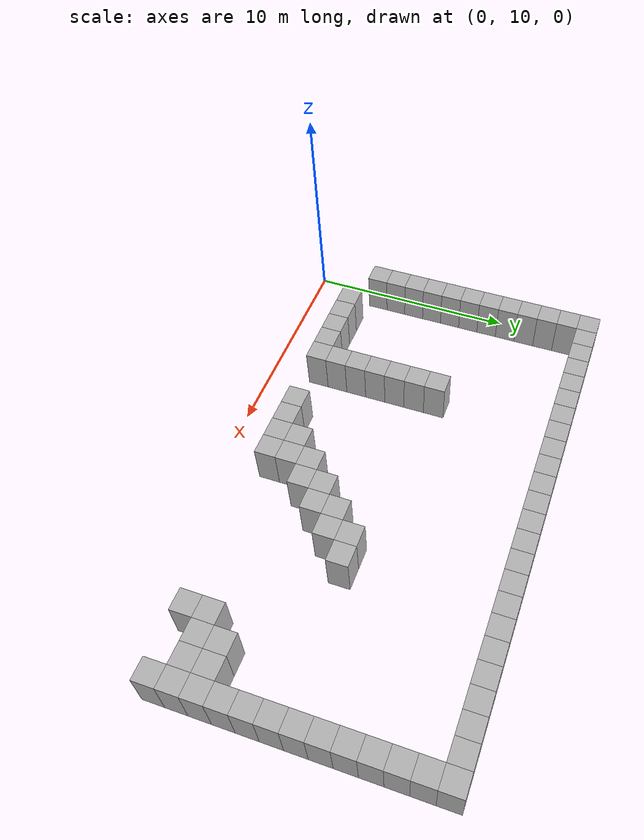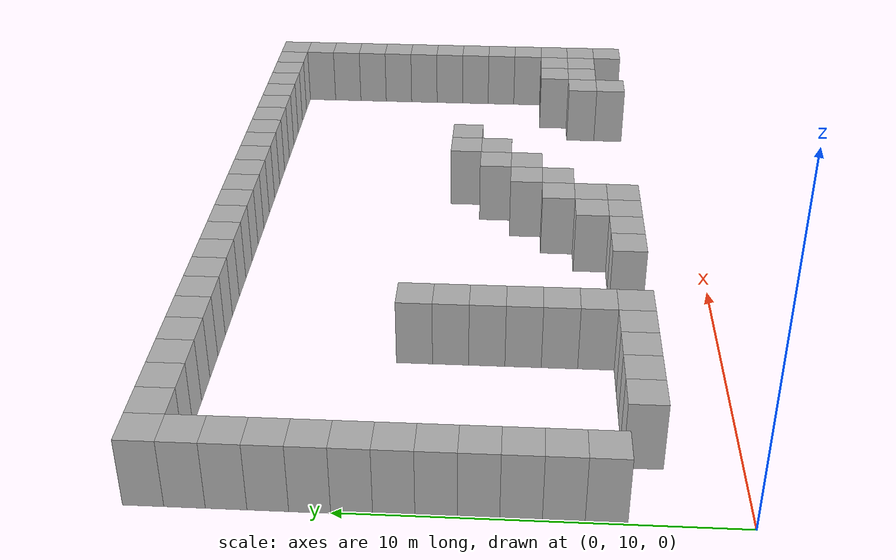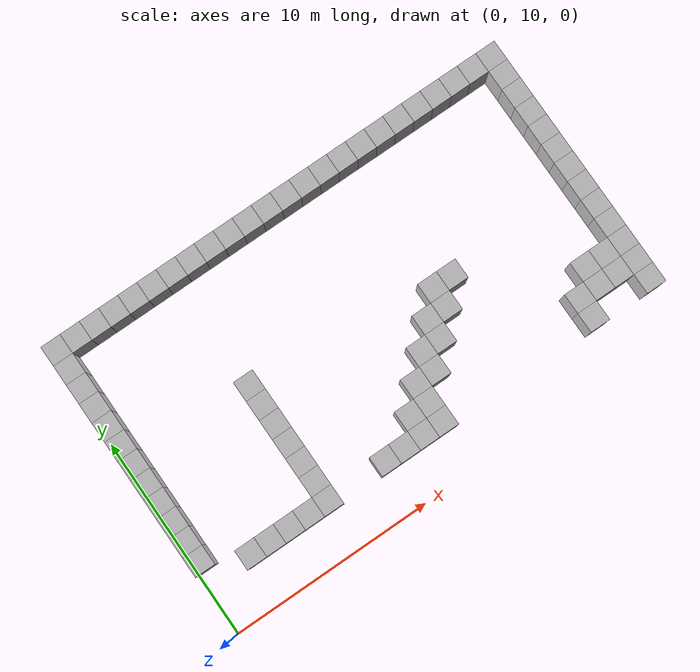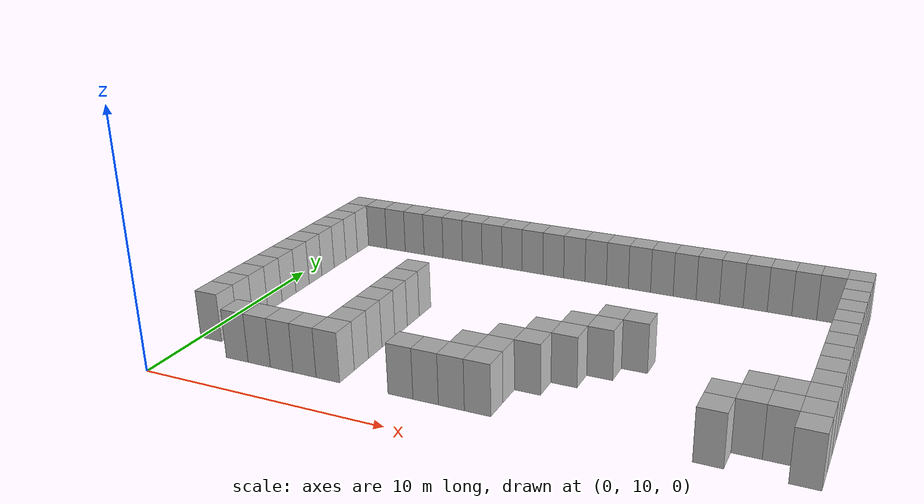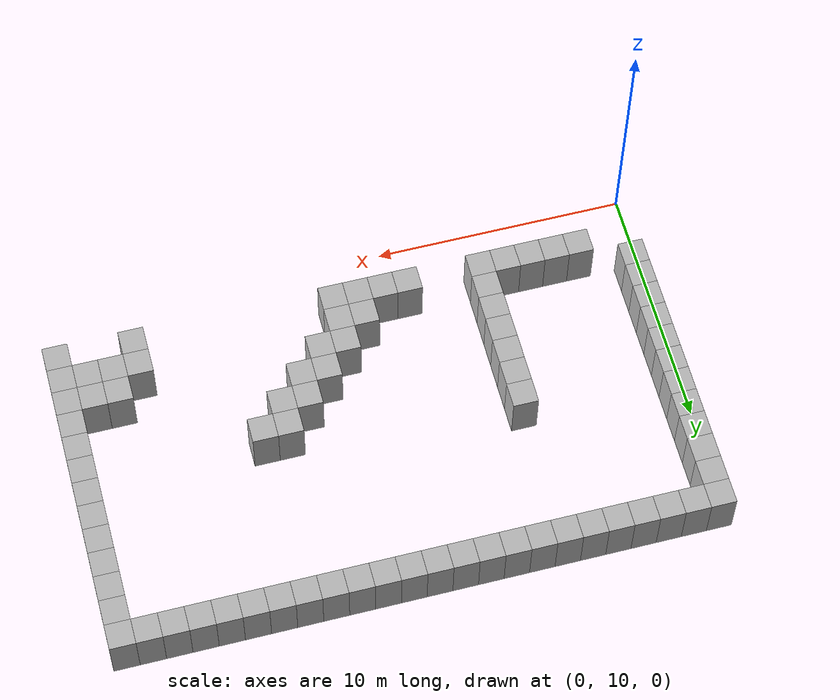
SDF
<sdf version="1.4">
 <world name="default">
  <model name="box_0_13">
   <pose>0.5 13.5 1.0 0 0 0</pose>
   <static>true</static>
   <link name="link">
    <collision name="collision"><geometry><box><size>1.0 1.0 2.0</size></box></geometry></collision>
    <visual name="visual"><geometry><box><size>1.0 1.0 2.0</size></box></geometry></visual>
   </link>
  </model>
  <model name="box_0_14">
   <pose>0.5 14.5 1.0 0 0 0</pose>
   <static>true</static>
   <link name="link">
    <collision name="collision"><geometry><box><size>1.0 1.0 2.0</size></box></geometry></collision>
    <visual name="visual"><geometry><box><size>1.0 1.0 2.0</size></box></geometry></visual>
   </link>
  </model>
  <model name="box_0_15">
   <pose>0.5 15.5 1.0 0 0 0</pose>
   <static>true</static>
   <link name="link">
    <collision name="collision"><geometry><box><size>1.0 1.0 2.0</size></box></geometry></collision>
    <visual name="visual"><geometry><box><size>1.0 1.0 2.0</size></box></geometry></visual>
   </link>
  </model>
  <model name="box_0_16">
   <pose>0.5 16.5 1.0 0 0 0</pose>
   <static>true</static>
   <link name="link">
    <collision name="collision"><geometry><box><size>1.0 1.0 2.0</size></box></geometry></collision>
    <visual name="visual"><geometry><box><size>1.0 1.0 2.0</size></box></geometry></visual>
   </link>
  </model>
  <model name="box_0_17">
   <pose>0.5 17.5 1.0 0 0 0</pose>
   <static>true</static>
   <link name="link">
    <collision name="collision"><geometry><box><size>1.0 1.0 2.0</size></box></geometry></collision>
    <visual name="visual"><geometry><box><size>1.0 1.0 2.0</size></box></geometry></visual>
   </link>
  </model>
  <model name="box_0_18">
   <pose>0.5 18.5 1.0 0 0 0</pose>
   <static>true</static>
   <link name="link">
    <collision name="collision"><geometry><box><size>1.0 1.0 2.0</size></box></geometry></collision>
    <visual name="visual"><geometry><box><size>1.0 1.0 2.0</size></box></geometry></visual>
   </link>
  </model>
  <model name="box_0_19">
   <pose>0.5 19.5 1.0 0 0 0</pose>
   <static>true</static>
   <link name="link">
    <collision name="collision"><geometry><box><size>1.0 1.0 2.0</size></box></geometry></collision>
    <visual name="visual"><geometry><box><size>1.0 1.0 2.0</size></box></geometry></visual>
   </link>
  </model>
  <model name="box_0_20">
   <pose>0.5 20.5 1.0 0 0 0</pose>
   <static>true</static>
   <link name="link">
    <collision name="collision"><geometry><box><size>1.0 1.0 2.0</size></box></geometry></collision>
    <visual name="visual"><geometry><box><size>1.0 1.0 2.0</size></box></geometry></visual>
   </link>
  </model>
  <model name="box_0_21">
   <pose>0.5 21.5 1.0 0 0 0</pose>
   <static>true</static>
   <link name="link">
    <collision name="collision"><geometry><box><size>1.0 1.0 2.0</size></box></geometry></collision>
    <visual name="visual"><geometry><box><size>1.0 1.0 2.0</size></box></geometry></visual>
   </link>
  </model>
  <model name="box_0_22">
   <pose>0.5 22.5 1.0 0 0 0</pose>
   <static>true</static>
   <link name="link">
    <collision name="collision"><geometry><box><size>1.0 1.0 2.0</size></box></geometry></collision>
    <visual name="visual"><geometry><box><size>1.0 1.0 2.0</size></box></geometry></visual>
   </link>
  </model>
  <model name="box_0_23">
   <pose>0.5 23.5 1.0 0 0 0</pose>
   <static>true</static>
   <link name="link">
    <collision name="collision"><geometry><box><size>1.0 1.0 2.0</size></box></geometry></collision>
    <visual name="visual"><geometry><box><size>1.0 1.0 2.0</size></box></geometry></visual>
   </link>
  </model>
  <model name="box_0_24">
   <pose>0.5 24.5 1.0 0 0 0</pose>
   <static>true</static>
   <link name="link">
    <collision name="collision"><geometry><box><size>1.0 1.0 2.0</size></box></geometry></collision>
    <visual name="visual"><geometry><box><size>1.0 1.0 2.0</size></box></geometry></visual>
   </link>
  </model>
  <model name="box_1_24">
   <pose>1.5 24.5 1.0 0 0 0</pose>
   <static>true</static>
   <link name="link">
    <collision name="collision"><geometry><box><size>1.0 1.0 2.0</size></box></geometry></collision>
    <visual name="visual"><geometry><box><size>1.0 1.0 2.0</size></box></geometry></visual>
   </link>
  </model>
  <model name="box_2_12">
   <pose>2.5 12.5 1.0 0 0 0</pose>
   <static>true</static>
   <link name="link">
    <collision name="collision"><geometry><box><size>1.0 1.0 2.0</size></box></geometry></collision>
    <visual name="visual"><geometry><box><size>1.0 1.0 2.0</size></box></geometry></visual>
   </link>
  </model>
  <model name="box_2_24">
   <pose>2.5 24.5 1.0 0 0 0</pose>
   <static>true</static>
   <link name="link">
    <collision name="collision"><geometry><box><size>1.0 1.0 2.0</size></box></geometry></collision>
    <visual name="visual"><geometry><box><size>1.0 1.0 2.0</size></box></geometry></visual>
   </link>
  </model>
  <model name="box_3_12">
   <pose>3.5 12.5 1.0 0 0 0</pose>
   <static>true</static>
   <link name="link">
    <collision name="collision"><geometry><box><size>1.0 1.0 2.0</size></box></geometry></collision>
    <visual name="visual"><geometry><box><size>1.0 1.0 2.0</size></box></geometry></visual>
   </link>
  </model>
  <model name="box_3_24">
   <pose>3.5 24.5 1.0 0 0 0</pose>
   <static>true</static>
   <link name="link">
    <collision name="collision"><geometry><box><size>1.0 1.0 2.0</size></box></geometry></collision>
    <visual name="visual"><geometry><box><size>1.0 1.0 2.0</size></box></geometry></visual>
   </link>
  </model>
  <model name="box_4_12">
   <pose>4.5 12.5 1.0 0 0 0</pose>
   <static>true</static>
   <link name="link">
    <collision name="collision"><geometry><box><size>1.0 1.0 2.0</size></box></geometry></collision>
    <visual name="visual"><geometry><box><size>1.0 1.0 2.0</size></box></geometry></visual>
   </link>
  </model>
  <model name="box_4_24">
   <pose>4.5 24.5 1.0 0 0 0</pose>
   <static>true</static>
   <link name="link">
    <collision name="collision"><geometry><box><size>1.0 1.0 2.0</size></box></geometry></collision>
    <visual name="visual"><geometry><box><size>1.0 1.0 2.0</size></box></geometry></visual>
   </link>
  </model>
  <model name="box_5_12">
   <pose>5.5 12.5 1.0 0 0 0</pose>
   <static>true</static>
   <link name="link">
    <collision name="collision"><geometry><box><size>1.0 1.0 2.0</size></box></geometry></collision>
    <visual name="visual"><geometry><box><size>1.0 1.0 2.0</size></box></geometry></visual>
   </link>
  </model>
  <model name="box_5_24">
   <pose>5.5 24.5 1.0 0 0 0</pose>
   <static>true</static>
   <link name="link">
    <collision name="collision"><geometry><box><size>1.0 1.0 2.0</size></box></geometry></collision>
    <visual name="visual"><geometry><box><size>1.0 1.0 2.0</size></box></geometry></visual>
   </link>
  </model>
  <model name="box_6_12">
   <pose>6.5 12.5 1.0 0 0 0</pose>
   <static>true</static>
   <link name="link">
    <collision name="collision"><geometry><box><size>1.0 1.0 2.0</size></box></geometry></collision>
    <visual name="visual"><geometry><box><size>1.0 1.0 2.0</size></box></geometry></visual>
   </link>
  </model>
  <model name="box_6_13">
   <pose>6.5 13.5 1.0 0 0 0</pose>
   <static>true</static>
   <link name="link">
    <collision name="collision"><geometry><box><size>1.0 1.0 2.0</size></box></geometry></collision>
    <visual name="visual"><geometry><box><size>1.0 1.0 2.0</size></box></geometry></visual>
   </link>
  </model>
  <model name="box_6_14">
   <pose>6.5 14.5 1.0 0 0 0</pose>
   <static>true</static>
   <link name="link">
    <collision name="collision"><geometry><box><size>1.0 1.0 2.0</size></box></geometry></collision>
    <visual name="visual"><geometry><box><size>1.0 1.0 2.0</size></box></geometry></visual>
   </link>
  </model>
  <model name="box_6_15">
   <pose>6.5 15.5 1.0 0 0 0</pose>
   <static>true</static>
   <link name="link">
    <collision name="collision"><geometry><box><size>1.0 1.0 2.0</size></box></geometry></collision>
    <visual name="visual"><geometry><box><size>1.0 1.0 2.0</size></box></geometry></visual>
   </link>
  </model>
  <model name="box_6_16">
   <pose>6.5 16.5 1.0 0 0 0</pose>
   <static>true</static>
   <link name="link">
    <collision name="collision"><geometry><box><size>1.0 1.0 2.0</size></box></geometry></collision>
    <visual name="visual"><geometry><box><size>1.0 1.0 2.0</size></box></geometry></visual>
   </link>
  </model>
  <model name="box_6_17">
   <pose>6.5 17.5 1.0 0 0 0</pose>
   <static>true</static>
   <link name="link">
    <collision name="collision"><geometry><box><size>1.0 1.0 2.0</size></box></geometry></collision>
    <visual name="visual"><geometry><box><size>1.0 1.0 2.0</size></box></geometry></visual>
   </link>
  </model>
  <model name="box_6_18">
   <pose>6.5 18.5 1.0 0 0 0</pose>
   <static>true</static>
   <link name="link">
    <collision name="collision"><geometry><box><size>1.0 1.0 2.0</size></box></geometry></collision>
    <visual name="visual"><geometry><box><size>1.0 1.0 2.0</size></box></geometry></visual>
   </link>
  </model>
  <model name="box_6_24">
   <pose>6.5 24.5 1.0 0 0 0</pose>
   <static>true</static>
   <link name="link">
    <collision name="collision"><geometry><box><size>1.0 1.0 2.0</size></box></geometry></collision>
    <visual name="visual"><geometry><box><size>1.0 1.0 2.0</size></box></geometry></visual>
   </link>
  </model>
  <model name="box_7_24">
   <pose>7.5 24.5 1.0 0 0 0</pose>
   <static>true</static>
   <link name="link">
    <collision name="collision"><geometry><box><size>1.0 1.0 2.0</size></box></geometry></collision>
    <visual name="visual"><geometry><box><size>1.0 1.0 2.0</size></box></geometry></visual>
   </link>
  </model>
  <model name="box_8_24">
   <pose>8.5 24.5 1.0 0 0 0</pose>
   <static>true</static>
   <link name="link">
    <collision name="collision"><geometry><box><size>1.0 1.0 2.0</size></box></geometry></collision>
    <visual name="visual"><geometry><box><size>1.0 1.0 2.0</size></box></geometry></visual>
   </link>
  </model>
  <model name="box_9_12">
   <pose>9.5 12.5 1.0 0 0 0</pose>
   <static>true</static>
   <link name="link">
    <collision name="collision"><geometry><box><size>1.0 1.0 2.0</size></box></geometry></collision>
    <visual name="visual"><geometry><box><size>1.0 1.0 2.0</size></box></geometry></visual>
   </link>
  </model>
  <model name="box_9_24">
   <pose>9.5 24.5 1.0 0 0 0</pose>
   <static>true</static>
   <link name="link">
    <collision name="collision"><geometry><box><size>1.0 1.0 2.0</size></box></geometry></collision>
    <visual name="visual"><geometry><box><size>1.0 1.0 2.0</size></box></geometry></visual>
   </link>
  </model>
  <model name="box_10_12">
   <pose>10.5 12.5 1.0 0 0 0</pose>
   <static>true</static>
   <link name="link">
    <collision name="collision"><geometry><box><size>1.0 1.0 2.0</size></box></geometry></collision>
    <visual name="visual"><geometry><box><size>1.0 1.0 2.0</size></box></geometry></visual>
   </link>
  </model>
  <model name="box_10_24">
   <pose>10.5 24.5 1.0 0 0 0</pose>
   <static>true</static>
   <link name="link">
    <collision name="collision"><geometry><box><size>1.0 1.0 2.0</size></box></geometry></collision>
    <visual name="visual"><geometry><box><size>1.0 1.0 2.0</size></box></geometry></visual>
   </link>
  </model>
  <model name="box_11_12">
   <pose>11.5 12.5 1.0 0 0 0</pose>
   <static>true</static>
   <link name="link">
    <collision name="collision"><geometry><box><size>1.0 1.0 2.0</size></box></geometry></collision>
    <visual name="visual"><geometry><box><size>1.0 1.0 2.0</size></box></geometry></visual>
   </link>
  </model>
  <model name="box_11_13">
   <pose>11.5 13.5 1.0 0 0 0</pose>
   <static>true</static>
   <link name="link">
    <collision name="collision"><geometry><box><size>1.0 1.0 2.0</size></box></geometry></collision>
    <visual name="visual"><geometry><box><size>1.0 1.0 2.0</size></box></geometry></visual>
   </link>
  </model>
  <model name="box_11_24">
   <pose>11.5 24.5 1.0 0 0 0</pose>
   <static>true</static>
   <link name="link">
    <collision name="collision"><geometry><box><size>1.0 1.0 2.0</size></box></geometry></collision>
    <visual name="visual"><geometry><box><size>1.0 1.0 2.0</size></box></geometry></visual>
   </link>
  </model>
  <model name="box_12_12">
   <pose>12.5 12.5 1.0 0 0 0</pose>
   <static>true</static>
   <link name="link">
    <collision name="collision"><geometry><box><size>1.0 1.0 2.0</size></box></geometry></collision>
    <visual name="visual"><geometry><box><size>1.0 1.0 2.0</size></box></geometry></visual>
   </link>
  </model>
  <model name="box_12_13">
   <pose>12.5 13.5 1.0 0 0 0</pose>
   <static>true</static>
   <link name="link">
    <collision name="collision"><geometry><box><size>1.0 1.0 2.0</size></box></geometry></collision>
    <visual name="visual"><geometry><box><size>1.0 1.0 2.0</size></box></geometry></visual>
   </link>
  </model>
  <model name="box_12_14">
   <pose>12.5 14.5 1.0 0 0 0</pose>
   <static>true</static>
   <link name="link">
    <collision name="collision"><geometry><box><size>1.0 1.0 2.0</size></box></geometry></collision>
    <visual name="visual"><geometry><box><size>1.0 1.0 2.0</size></box></geometry></visual>
   </link>
  </model>
  <model name="box_12_24">
   <pose>12.5 24.5 1.0 0 0 0</pose>
   <static>true</static>
   <link name="link">
    <collision name="collision"><geometry><box><size>1.0 1.0 2.0</size></box></geometry></collision>
    <visual name="visual"><geometry><box><size>1.0 1.0 2.0</size></box></geometry></visual>
   </link>
  </model>
  <model name="box_13_14">
   <pose>13.5 14.5 1.0 0 0 0</pose>
   <static>true</static>
   <link name="link">
    <collision name="collision"><geometry><box><size>1.0 1.0 2.0</size></box></geometry></collision>
    <visual name="visual"><geometry><box><size>1.0 1.0 2.0</size></box></geometry></visual>
   </link>
  </model>
  <model name="box_13_15">
   <pose>13.5 15.5 1.0 0 0 0</pose>
   <static>true</static>
   <link name="link">
    <collision name="collision"><geometry><box><size>1.0 1.0 2.0</size></box></geometry></collision>
    <visual name="visual"><geometry><box><size>1.0 1.0 2.0</size></box></geometry></visual>
   </link>
  </model>
  <model name="box_13_24">
   <pose>13.5 24.5 1.0 0 0 0</pose>
   <static>true</static>
   <link name="link">
    <collision name="collision"><geometry><box><size>1.0 1.0 2.0</size></box></geometry></collision>
    <visual name="visual"><geometry><box><size>1.0 1.0 2.0</size></box></geometry></visual>
   </link>
  </model>
  <model name="box_14_15">
   <pose>14.5 15.5 1.0 0 0 0</pose>
   <static>true</static>
   <link name="link">
    <collision name="collision"><geometry><box><size>1.0 1.0 2.0</size></box></geometry></collision>
    <visual name="visual"><geometry><box><size>1.0 1.0 2.0</size></box></geometry></visual>
   </link>
  </model>
  <model name="box_14_16">
   <pose>14.5 16.5 1.0 0 0 0</pose>
   <static>true</static>
   <link name="link">
    <collision name="collision"><geometry><box><size>1.0 1.0 2.0</size></box></geometry></collision>
    <visual name="visual"><geometry><box><size>1.0 1.0 2.0</size></box></geometry></visual>
   </link>
  </model>
  <model name="box_14_24">
   <pose>14.5 24.5 1.0 0 0 0</pose>
   <static>true</static>
   <link name="link">
    <collision name="collision"><geometry><box><size>1.0 1.0 2.0</size></box></geometry></collision>
    <visual name="visual"><geometry><box><size>1.0 1.0 2.0</size></box></geometry></visual>
   </link>
  </model>
  <model name="box_15_16">
   <pose>15.5 16.5 1.0 0 0 0</pose>
   <static>true</static>
   <link name="link">
    <collision name="collision"><geometry><box><size>1.0 1.0 2.0</size></box></geometry></collision>
    <visual name="visual"><geometry><box><size>1.0 1.0 2.0</size></box></geometry></visual>
   </link>
  </model>
  <model name="box_15_17">
   <pose>15.5 17.5 1.0 0 0 0</pose>
   <static>true</static>
   <link name="link">
    <collision name="collision"><geometry><box><size>1.0 1.0 2.0</size></box></geometry></collision>
    <visual name="visual"><geometry><box><size>1.0 1.0 2.0</size></box></geometry></visual>
   </link>
  </model>
  <model name="box_15_24">
   <pose>15.5 24.5 1.0 0 0 0</pose>
   <static>true</static>
   <link name="link">
    <collision name="collision"><geometry><box><size>1.0 1.0 2.0</size></box></geometry></collision>
    <visual name="visual"><geometry><box><size>1.0 1.0 2.0</size></box></geometry></visual>
   </link>
  </model>
  <model name="box_16_17">
   <pose>16.5 17.5 1.0 0 0 0</pose>
   <static>true</static>
   <link name="link">
    <collision name="collision"><geometry><box><size>1.0 1.0 2.0</size></box></geometry></collision>
    <visual name="visual"><geometry><box><size>1.0 1.0 2.0</size></box></geometry></visual>
   </link>
  </model>
  <model name="box_16_24">
   <pose>16.5 24.5 1.0 0 0 0</pose>
   <static>true</static>
   <link name="link">
    <collision name="collision"><geometry><box><size>1.0 1.0 2.0</size></box></geometry></collision>
    <visual name="visual"><geometry><box><size>1.0 1.0 2.0</size></box></geometry></visual>
   </link>
  </model>
  <model name="box_17_24">
   <pose>17.5 24.5 1.0 0 0 0</pose>
   <static>true</static>
   <link name="link">
    <collision name="collision"><geometry><box><size>1.0 1.0 2.0</size></box></geometry></collision>
    <visual name="visual"><geometry><box><size>1.0 1.0 2.0</size></box></geometry></visual>
   </link>
  </model>
  <model name="box_18_24">
   <pose>18.5 24.5 1.0 0 0 0</pose>
   <static>true</static>
   <link name="link">
    <collision name="collision"><geometry><box><size>1.0 1.0 2.0</size></box></geometry></collision>
    <visual name="visual"><geometry><box><size>1.0 1.0 2.0</size></box></geometry></visual>
   </link>
  </model>
  <model name="box_19_24">
   <pose>19.5 24.5 1.0 0 0 0</pose>
   <static>true</static>
   <link name="link">
    <collision name="collision"><geometry><box><size>1.0 1.0 2.0</size></box></geometry></collision>
    <visual name="visual"><geometry><box><size>1.0 1.0 2.0</size></box></geometry></visual>
   </link>
  </model>
  <model name="box_20_12">
   <pose>20.5 12.5 1.0 0 0 0</pose>
   <static>true</static>
   <link name="link">
    <collision name="collision"><geometry><box><size>1.0 1.0 2.0</size></box></geometry></collision>
    <visual name="visual"><geometry><box><size>1.0 1.0 2.0</size></box></geometry></visual>
   </link>
  </model>
  <model name="box_20_13">
   <pose>20.5 13.5 1.0 0 0 0</pose>
   <static>true</static>
   <link name="link">
    <collision name="collision"><geometry><box><size>1.0 1.0 2.0</size></box></geometry></collision>
    <visual name="visual"><geometry><box><size>1.0 1.0 2.0</size></box></geometry></visual>
   </link>
  </model>
  <model name="box_20_24">
   <pose>20.5 24.5 1.0 0 0 0</pose>
   <static>true</static>
   <link name="link">
    <collision name="collision"><geometry><box><size>1.0 1.0 2.0</size></box></geometry></collision>
    <visual name="visual"><geometry><box><size>1.0 1.0 2.0</size></box></geometry></visual>
   </link>
  </model>
  <model name="box_21_13">
   <pose>21.5 13.5 1.0 0 0 0</pose>
   <static>true</static>
   <link name="link">
    <collision name="collision"><geometry><box><size>1.0 1.0 2.0</size></box></geometry></collision>
    <visual name="visual"><geometry><box><size>1.0 1.0 2.0</size></box></geometry></visual>
   </link>
  </model>
  <model name="box_21_14">
   <pose>21.5 14.5 1.0 0 0 0</pose>
   <static>true</static>
   <link name="link">
    <collision name="collision"><geometry><box><size>1.0 1.0 2.0</size></box></geometry></collision>
    <visual name="visual"><geometry><box><size>1.0 1.0 2.0</size></box></geometry></visual>
   </link>
  </model>
  <model name="box_21_24">
   <pose>21.5 24.5 1.0 0 0 0</pose>
   <static>true</static>
   <link name="link">
    <collision name="collision"><geometry><box><size>1.0 1.0 2.0</size></box></geometry></collision>
    <visual name="visual"><geometry><box><size>1.0 1.0 2.0</size></box></geometry></visual>
   </link>
  </model>
  <model name="box_22_13">
   <pose>22.5 13.5 1.0 0 0 0</pose>
   <static>true</static>
   <link name="link">
    <collision name="collision"><geometry><box><size>1.0 1.0 2.0</size></box></geometry></collision>
    <visual name="visual"><geometry><box><size>1.0 1.0 2.0</size></box></geometry></visual>
   </link>
  </model>
  <model name="box_22_14">
   <pose>22.5 14.5 1.0 0 0 0</pose>
   <static>true</static>
   <link name="link">
    <collision name="collision"><geometry><box><size>1.0 1.0 2.0</size></box></geometry></collision>
    <visual name="visual"><geometry><box><size>1.0 1.0 2.0</size></box></geometry></visual>
   </link>
  </model>
  <model name="box_22_24">
   <pose>22.5 24.5 1.0 0 0 0</pose>
   <static>true</static>
   <link name="link">
    <collision name="collision"><geometry><box><size>1.0 1.0 2.0</size></box></geometry></collision>
    <visual name="visual"><geometry><box><size>1.0 1.0 2.0</size></box></geometry></visual>
   </link>
  </model>
  <model name="box_23_12">
   <pose>23.5 12.5 1.0 0 0 0</pose>
   <static>true</static>
   <link name="link">
    <collision name="collision"><geometry><box><size>1.0 1.0 2.0</size></box></geometry></collision>
    <visual name="visual"><geometry><box><size>1.0 1.0 2.0</size></box></geometry></visual>
   </link>
  </model>
  <model name="box_23_13">
   <pose>23.5 13.5 1.0 0 0 0</pose>
   <static>true</static>
   <link name="link">
    <collision name="collision"><geometry><box><size>1.0 1.0 2.0</size></box></geometry></collision>
    <visual name="visual"><geometry><box><size>1.0 1.0 2.0</size></box></geometry></visual>
   </link>
  </model>
  <model name="box_23_14">
   <pose>23.5 14.5 1.0 0 0 0</pose>
   <static>true</static>
   <link name="link">
    <collision name="collision"><geometry><box><size>1.0 1.0 2.0</size></box></geometry></collision>
    <visual name="visual"><geometry><box><size>1.0 1.0 2.0</size></box></geometry></visual>
   </link>
  </model>
  <model name="box_23_15">
   <pose>23.5 15.5 1.0 0 0 0</pose>
   <static>true</static>
   <link name="link">
    <collision name="collision"><geometry><box><size>1.0 1.0 2.0</size></box></geometry></collision>
    <visual name="visual"><geometry><box><size>1.0 1.0 2.0</size></box></geometry></visual>
   </link>
  </model>
  <model name="box_23_16">
   <pose>23.5 16.5 1.0 0 0 0</pose>
   <static>true</static>
   <link name="link">
    <collision name="collision"><geometry><box><size>1.0 1.0 2.0</size></box></geometry></collision>
    <visual name="visual"><geometry><box><size>1.0 1.0 2.0</size></box></geometry></visual>
   </link>
  </model>
  <model name="box_23_17">
   <pose>23.5 17.5 1.0 0 0 0</pose>
   <static>true</static>
   <link name="link">
    <collision name="collision"><geometry><box><size>1.0 1.0 2.0</size></box></geometry></collision>
    <visual name="visual"><geometry><box><size>1.0 1.0 2.0</size></box></geometry></visual>
   </link>
  </model>
  <model name="box_23_18">
   <pose>23.5 18.5 1.0 0 0 0</pose>
   <static>true</static>
   <link name="link">
    <collision name="collision"><geometry><box><size>1.0 1.0 2.0</size></box></geometry></collision>
    <visual name="visual"><geometry><box><size>1.0 1.0 2.0</size></box></geometry></visual>
   </link>
  </model>
  <model name="box_23_19">
   <pose>23.5 19.5 1.0 0 0 0</pose>
   <static>true</static>
   <link name="link">
    <collision name="collision"><geometry><box><size>1.0 1.0 2.0</size></box></geometry></collision>
    <visual name="visual"><geometry><box><size>1.0 1.0 2.0</size></box></geometry></visual>
   </link>
  </model>
  <model name="box_23_20">
   <pose>23.5 20.5 1.0 0 0 0</pose>
   <static>true</static>
   <link name="link">
    <collision name="collision"><geometry><box><size>1.0 1.0 2.0</size></box></geometry></collision>
    <visual name="visual"><geometry><box><size>1.0 1.0 2.0</size></box></geometry></visual>
   </link>
  </model>
  <model name="box_23_21">
   <pose>23.5 21.5 1.0 0 0 0</pose>
   <static>true</static>
   <link name="link">
    <collision name="collision"><geometry><box><size>1.0 1.0 2.0</size></box></geometry></collision>
    <visual name="visual"><geometry><box><size>1.0 1.0 2.0</size></box></geometry></visual>
   </link>
  </model>
  <model name="box_23_22">
   <pose>23.5 22.5 1.0 0 0 0</pose>
   <static>true</static>
   <link name="link">
    <collision name="collision"><geometry><box><size>1.0 1.0 2.0</size></box></geometry></collision>
    <visual name="visual"><geometry><box><size>1.0 1.0 2.0</size></box></geometry></visual>
   </link>
  </model>
  <model name="box_23_23">
   <pose>23.5 23.5 1.0 0 0 0</pose>
   <static>true</static>
   <link name="link">
    <collision name="collision"><geometry><box><size>1.0 1.0 2.0</size></box></geometry></collision>
    <visual name="visual"><geometry><box><size>1.0 1.0 2.0</size></box></geometry></visual>
   </link>
  </model>
  <model name="box_23_24">
   <pose>23.5 24.5 1.0 0 0 0</pose>
   <static>true</static>
   <link name="link">
    <collision name="collision"><geometry><box><size>1.0 1.0 2.0</size></box></geometry></collision>
    <visual name="visual"><geometry><box><size>1.0 1.0 2.0</size></box></geometry></visual>
   </link>
  </model>
 </world>
</sdf>
